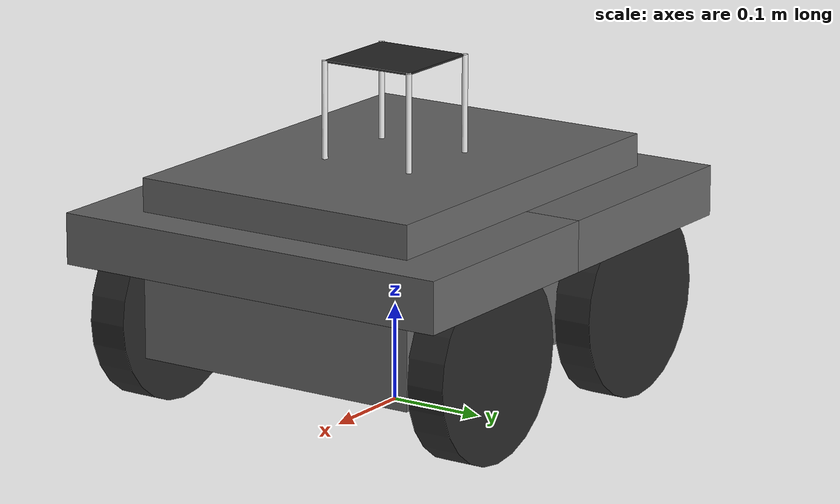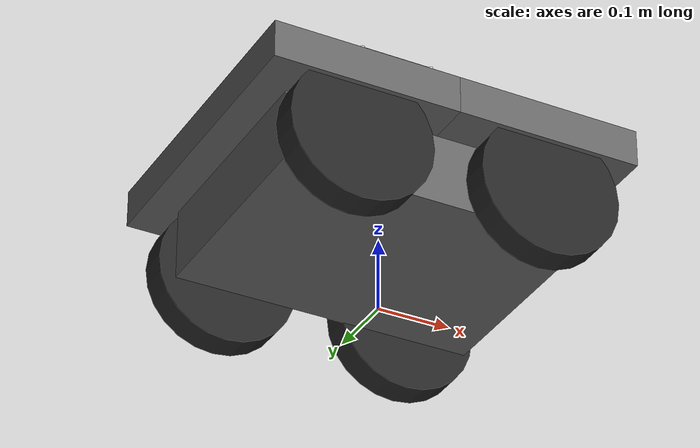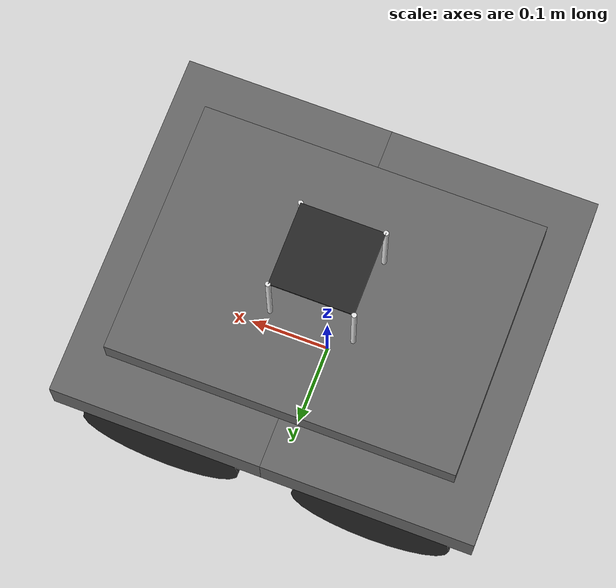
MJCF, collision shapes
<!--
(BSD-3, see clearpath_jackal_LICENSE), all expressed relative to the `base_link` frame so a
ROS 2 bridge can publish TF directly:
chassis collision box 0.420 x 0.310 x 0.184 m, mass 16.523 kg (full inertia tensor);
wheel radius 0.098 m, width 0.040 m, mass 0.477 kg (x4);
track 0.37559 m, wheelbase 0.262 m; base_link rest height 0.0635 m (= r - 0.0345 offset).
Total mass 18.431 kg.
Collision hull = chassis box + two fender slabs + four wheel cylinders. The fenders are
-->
<mujoco model="clearpath_jackal">

  <compiler meshdir="meshes"/>

  <asset>
    <material name="jackal_yellow" rgba="0.80 0.80 0.00 1"/>
    <material name="jackal_black"  rgba="0.15 0.15 0.15 1"/>
    <material name="jackal_dark"   rgba="0.20 0.20 0.20 1"/>
    <material name="jackal_grey"   rgba="0.40 0.40 0.40 1"/>
    <material name="jackal_white"  rgba="0.90 0.90 0.90 1"/>

    <mesh name="jackal_base"   file="jackal-base.stl"/>
    <mesh name="jackal_fender" file="jackal-fender.stl"/>
    <mesh name="jackal_wheel"  file="jackal-wheel.stl"/>
  </asset>

  <default>
    <default class="jackal_wheel">
      <geom type="cylinder" size="0.098 0.020" quat="0.707107 0.707107 0 0"
            material="jackal_black" condim="3" friction="0.5 0.005 0.0001"/>
    </default>
    <default class="jackal_visual">
      <geom type="mesh" contype="0" conaffinity="0" group="2"/>
    </default>
    <default class="jackal_collision">
      <geom group="3" condim="3" friction="0.4 0.005 0.0001" material="jackal_grey"/>
    </default>
  </default>

  <worldbody>
    <!-- base_link: URDF root (base_link_joint to chassis_link is identity, so the two coincide).
         freejoint makes the robot mobile; spawns just above rest height and settles on the wheels. -->
    <body name="base_link" pos="0 0 0.07">
      <freejoint name="base_free"/>
      <site name="base_imu" pos="0 0 0" size="0.01" rgba="0 0 0 0"/>

      <!-- Spectator camera that tracks the robot (constant world-frame offset, level horizon). -->
      <camera name="track" mode="track" pos="-1.8 -1.8 1.3" xyaxes="0.7 -0.7 0 0.3 0.3 0.9"/>

      <!-- Chassis inertia: mass + full inertia tensor + COM offset, from jackal_description.
           MuJoCo fullinertia order is (ixx iyy izz ixy ixz iyz). -->
      <inertial pos="0.012 0.002 0.067" mass="16.523"
                fullinertia="0.3136 0.3922 0.4485 -0.0008 0.0164 -0.0009"/>

      <!-- Chassis collision box (URDF chassis_link collision, origin z = chassis_height/2). -->
      <geom class="jackal_collision" name="base_collision" type="box"
            size="0.210 0.155 0.092" pos="0 0 0.092"/>

      <geom class="jackal_collision" name="front_fender_collision" type="box"
            size="0.12765 0.215 0.0261" pos="0.12765 0 0.1236"/>
      <geom class="jackal_collision" name="rear_fender_collision" type="box"
            size="0.12765 0.215 0.0261" pos="-0.12765 0 0.1236"/>

      <geom class="jackal_visual" mesh="jackal_base"   material="jackal_dark"
            pos="0 0 -0.0655" quat="0.5 0.5 0.5 0.5"/>
      <geom class="jackal_visual" mesh="jackal_fender" material="jackal_yellow"/>
      <geom class="jackal_visual" mesh="jackal_fender" material="jackal_yellow" quat="0 0 0 1"/>

      <geom class="jackal_visual" type="cylinder" size="0.003 0.05" pos=" 0.05  0.05 0.234" material="jackal_white"/>
      <geom class="jackal_visual" type="cylinder" size="0.003 0.05" pos=" 0.05 -0.05 0.234" material="jackal_white"/>
      <geom class="jackal_visual" type="cylinder" size="0.003 0.05" pos="-0.05  0.05 0.234" material="jackal_white"/>
      <geom class="jackal_visual" type="cylinder" size="0.003 0.05" pos="-0.05 -0.05 0.234" material="jackal_white"/>
      <geom class="jackal_visual" type="box"      size="0.05 0.05 0.001" pos="0 0 0.283" material="jackal_black"/>

      <body name="front_left_wheel" pos="0.131 0.187795 0.0345">
        <joint name="front_left_wheel_joint" type="hinge" axis="0 1 0" armature="0.02" frictionloss="0.15"/>
        <inertial pos="0 0 0" mass="0.477" diaginertia="0.0013 0.0024 0.0013"/>
        <geom class="jackal_wheel" name="front_left_wheel_geom"/>
        <geom class="jackal_visual" mesh="jackal_wheel" quat="0.707107 0.707107 0 0"/>
      </body>
      <!-- Front-right wheel -->
      <body name="front_right_wheel" pos="0.131 -0.187795 0.0345">
        <joint name="front_right_wheel_joint" type="hinge" axis="0 1 0" armature="0.02" frictionloss="0.15"/>
        <inertial pos="0 0 0" mass="0.477" diaginertia="0.0013 0.0024 0.0013"/>
        <geom class="jackal_wheel" name="front_right_wheel_geom"/>
        <geom class="jackal_visual" mesh="jackal_wheel" quat="0.707107 0.707107 0 0"/>
      </body>
      <!-- Rear-left wheel -->
      <body name="rear_left_wheel" pos="-0.131 0.187795 0.0345">
        <joint name="rear_left_wheel_joint" type="hinge" axis="0 1 0" armature="0.02" frictionloss="0.15"/>
        <inertial pos="0 0 0" mass="0.477" diaginertia="0.0013 0.0024 0.0013"/>
        <geom class="jackal_wheel" name="rear_left_wheel_geom"/>
        <geom class="jackal_visual" mesh="jackal_wheel" quat="0.707107 0.707107 0 0"/>
      </body>
      <!-- Rear-right wheel -->
      <body name="rear_right_wheel" pos="-0.131 -0.187795 0.0345">
        <joint name="rear_right_wheel_joint" type="hinge" axis="0 1 0" armature="0.02" frictionloss="0.15"/>
        <inertial pos="0 0 0" mass="0.477" diaginertia="0.0013 0.0024 0.0013"/>
        <geom class="jackal_wheel" name="rear_right_wheel_geom"/>
        <geom class="jackal_visual" mesh="jackal_wheel" quat="0.707107 0.707107 0 0"/>
      </body>
    </body>
  </worldbody>

  <contact>
    <pair geom1="front_left_wheel_geom"  geom2="floor" condim="3" solref="0.02 1" friction="0.5 0.5 0.005 0.0001 0.0001"/>
    <pair geom1="front_right_wheel_geom" geom2="floor" condim="3" solref="0.02 1" friction="0.5 0.5 0.005 0.0001 0.0001"/>
    <pair geom1="rear_left_wheel_geom"   geom2="floor" condim="3" solref="0.02 1" friction="0.5 0.5 0.005 0.0001 0.0001"/>
    <pair geom1="rear_right_wheel_geom"  geom2="floor" condim="3" solref="0.02 1" friction="0.5 0.5 0.005 0.0001 0.0001"/>
  </contact>

  <actuator>
    <velocity name="front_left_wheel_motor"  joint="front_left_wheel_joint"  kv="15" ctrlrange="-25 25" forcerange="-5 5"/>
    <velocity name="front_right_wheel_motor" joint="front_right_wheel_joint" kv="15" ctrlrange="-25 25" forcerange="-5 5"/>
    <velocity name="rear_left_wheel_motor"   joint="rear_left_wheel_joint"   kv="15" ctrlrange="-25 25" forcerange="-5 5"/>
    <velocity name="rear_right_wheel_motor"  joint="rear_right_wheel_joint"  kv="15" ctrlrange="-25 25" forcerange="-5 5"/>
  </actuator>

  <sensor>
    <!-- Ground-truth base pose/velocity (odom + debug) -->
    <framepos     name="base_pos"    objtype="site" objname="base_imu"/>
    <framequat    name="base_quat"   objtype="site" objname="base_imu"/>
    <framelinvel  name="base_linvel" objtype="site" objname="base_imu"/>
    <frameangvel  name="base_angvel" objtype="site" objname="base_imu"/>
    <!-- IMU at base (the URDF's imu_link is at chassis_link origin, i.e. base_link). -->
    <velocimeter   name="imu_vel"  site="base_imu"/>
    <gyro          name="imu_gyro" site="base_imu"/>
    <accelerometer name="imu_acc"  site="base_imu"/>
    <!-- Wheel encoders (all four) -->
    <jointpos name="front_left_wheel_pos"  joint="front_left_wheel_joint"/>
    <jointpos name="front_right_wheel_pos" joint="front_right_wheel_joint"/>
    <jointpos name="rear_left_wheel_pos"   joint="rear_left_wheel_joint"/>
    <jointpos name="rear_right_wheel_pos"  joint="rear_right_wheel_joint"/>
    <jointvel name="front_left_wheel_vel"  joint="front_left_wheel_joint"/>
    <jointvel name="front_right_wheel_vel" joint="front_right_wheel_joint"/>
    <jointvel name="rear_left_wheel_vel"   joint="rear_left_wheel_joint"/>
    <jointvel name="rear_right_wheel_vel"  joint="rear_right_wheel_joint"/>
  </sensor>

  <keyframe>
    <!-- Canonical home: base at rest height (r - wheel_vertical_offset), wheels zeroed. -->
    <key name="home" qpos="0 0 0.0635 1 0 0 0  0 0 0 0"/>
  </keyframe>
</mujoco>
